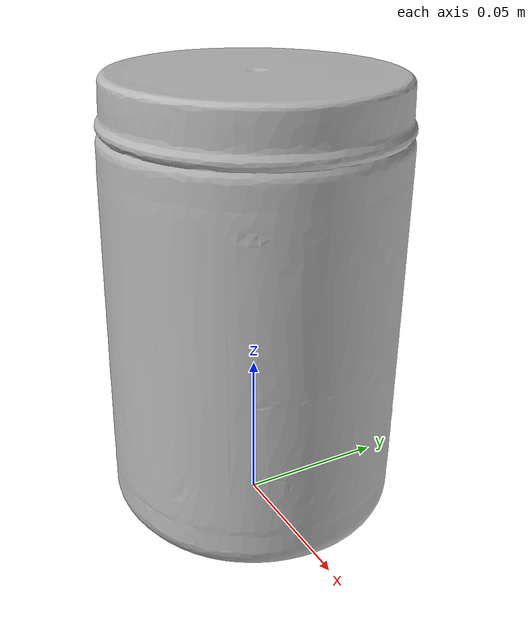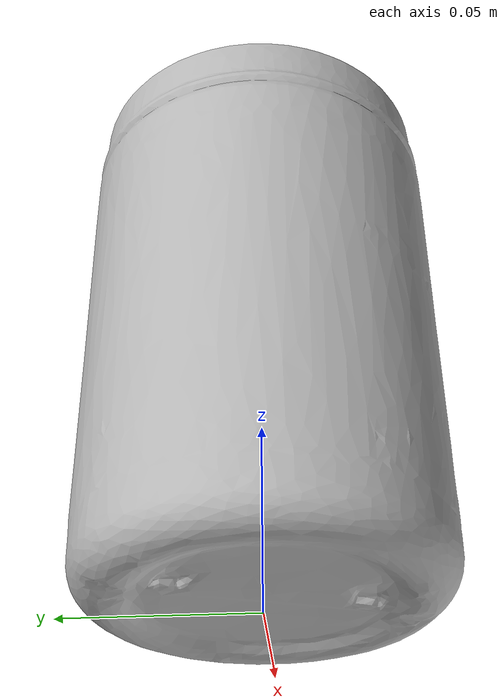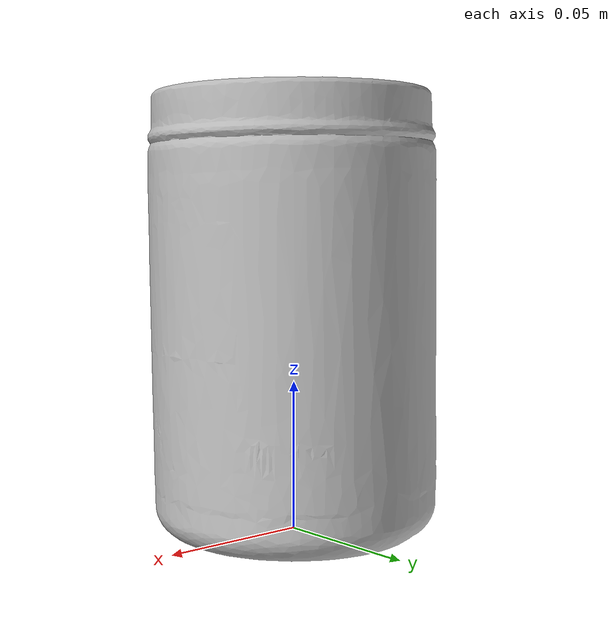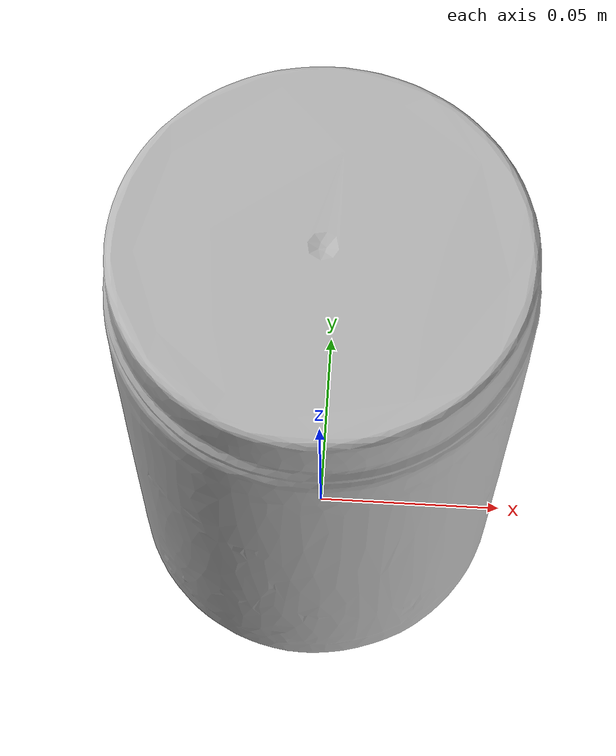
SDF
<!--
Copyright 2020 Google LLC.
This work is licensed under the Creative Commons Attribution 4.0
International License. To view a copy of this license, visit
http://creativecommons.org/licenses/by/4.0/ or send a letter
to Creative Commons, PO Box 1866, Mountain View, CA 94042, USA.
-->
<?xml version="1.0" ?>
<sdf version="1.6">
  <model name="Xyli_Pure_Xylitol">
    <link name="link_0">
      <visual name="visual">
        <geometry>
          <mesh>
            <uri>meshes/model.obj</uri>
          </mesh>
        </geometry>
      </visual>
      <collision name="collision_0">
        <geometry>
          <mesh>
            <uri>meshes/model.obj</uri>
          </mesh>
        </geometry>
      </collision>
    </link>
  </model>
</sdf>
